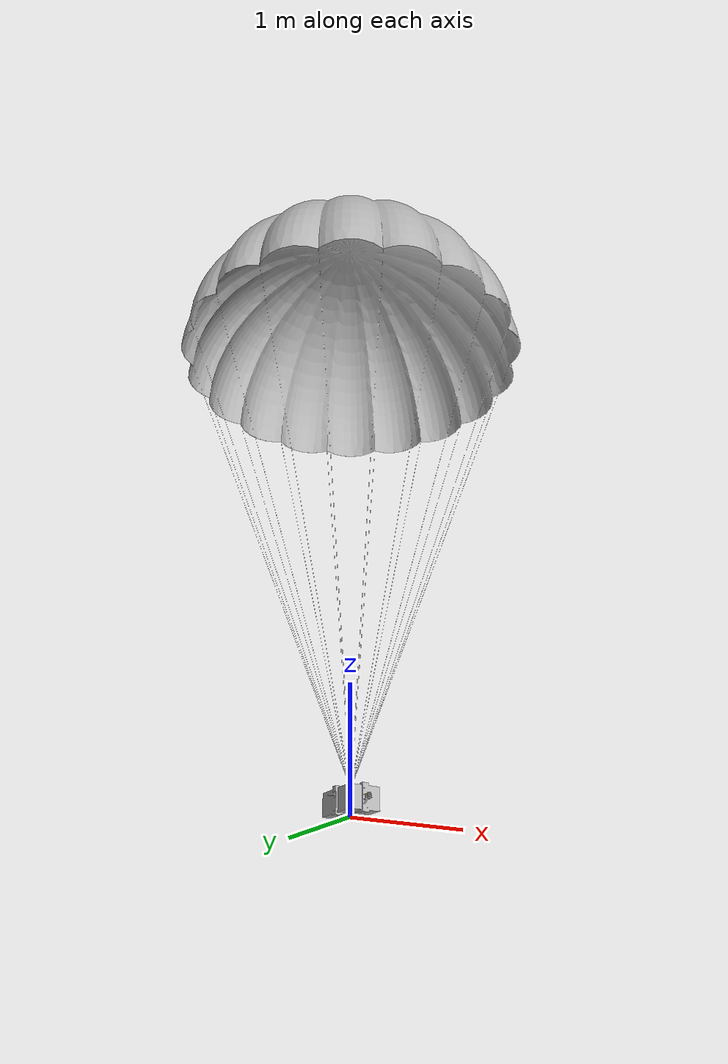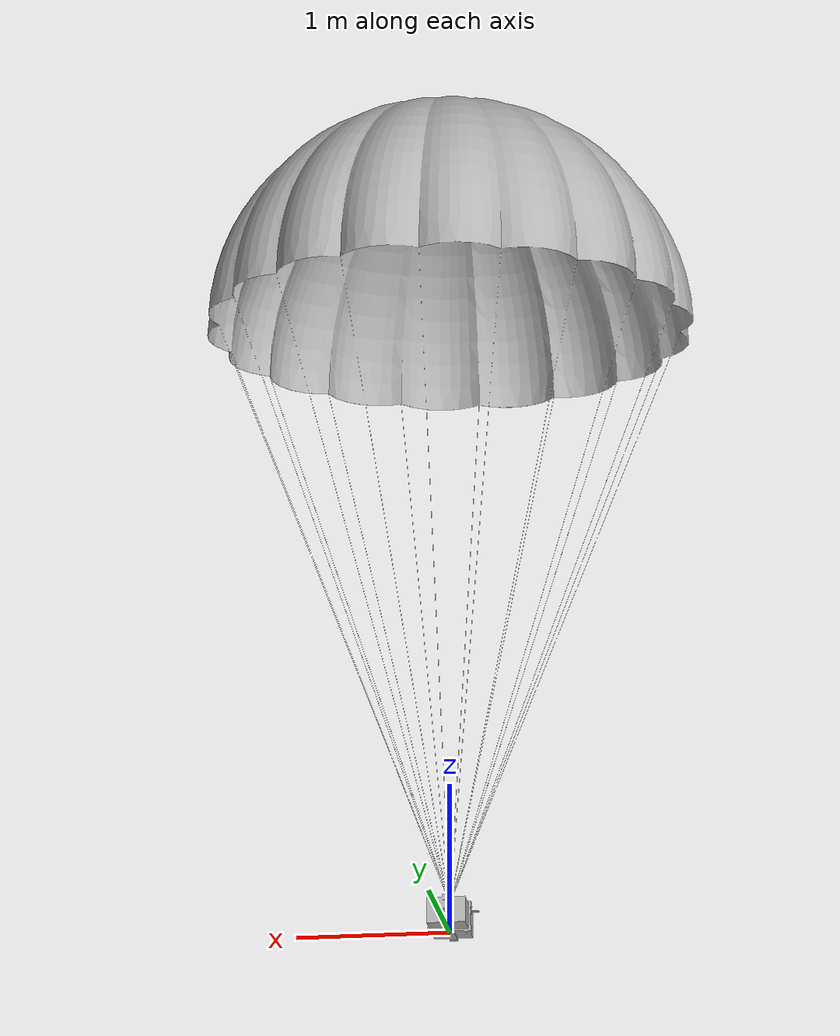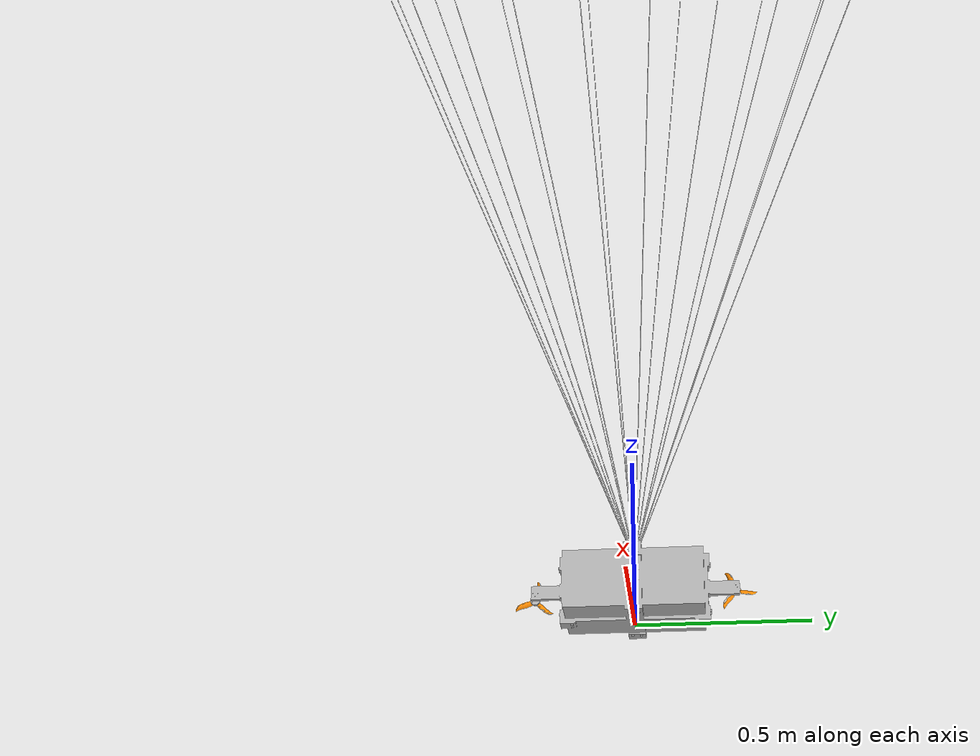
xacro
<?xml version="1.0" encoding="utf-8"?>
<robot

  name="parachute_drone" xmlns:xacro="http://www.ros.org/wiki/xacro">

  <xacro:include filename="$(find parachute_drone)/urdf/parachute_drone.gazebo"/>

  <link
    name="parachute_drone">
    <inertial>
      <origin
        xyz="-0.0 -0.0 0.0"
        rpy="0 0 0" />
      <mass
        value="2.5" />
      <inertia
        ixx="0.6"
        ixy="0.0"
        ixz="0.0"
        iyy="0.6"
        iyz="0.0"
        izz="0.3" />
    </inertial>
    <visual>
      <origin
        xyz="0 0 0"
        rpy="0 0 0" />
      <geometry>
        <mesh
          filename="package://parachute_drone/meshes/parachute_drone.STL" />
      </geometry>
      <material
        name="">
        <color
          rgba="0.69804 0.69804 0.69804 1" />
      </material>
    </visual>
    <collision>
      <origin
        xyz="0 0 0"
        rpy="0 0 0" />
      <geometry>
        <mesh
          filename="package://parachute_drone/meshes/parachute_drone.STL" />
      </geometry>
    </collision>
  </link>
  <link
    name="prop2">
    <inertial>
      <origin
        xyz="0 0 0.0"
        rpy="0 0 0" />
      <mass
        value="0.0036842" />
      <inertia
        ixx="0.001"
        ixy="0"
        ixz="0"
        iyy="0.001"
        iyz="0"
        izz="0.001" />
    </inertial>
    <visual>
      <origin
        xyz="0 0 0"
        rpy="0 0 0" />
      <geometry>
        <mesh
          filename="package://parachute_drone/meshes/prop2.STL" />
      </geometry>
      <material
        name="">
        <color
          rgba="1 0.54902 0 1" />
      </material>
    </visual>
    <collision>
      <origin
        xyz="0 0 0"
        rpy="0 0 0" />
      <geometry>
        <mesh
          filename="package://parachute_drone/meshes/prop2.STL" />
      </geometry>
    </collision>
  </link>
  <joint
    name="motor2"
    type="continuous">
    <origin
      xyz="-0.03343 0.288 0.1038"
      rpy="-1.5708 -1.1823 -1.5708" />
    <parent
      link="parachute_drone" />
    <child
      link="prop2" />
    <axis
      xyz="0 0 1" />
    <dynamics
      damping="0.0"
      friction="0.0" />
  </joint>
  <link
    name="prop1">
    <inertial>
      <origin
        xyz="0 0 0.0"
        rpy="0 0 0" />
      <mass
        value="0.0036837" />
      <inertia
        ixx="0.001"
        ixy="0"
        ixz="0"
        iyy="0.001"
        iyz="0"
        izz="0.001" />
    </inertial>
    <visual>
      <origin
        xyz="0 0 0"
        rpy="0 0 0" />
      <geometry>
        <mesh
          filename="package://parachute_drone/meshes/prop1.STL" />
      </geometry>
      <material
        name="">
        <color
          rgba="1 0.54902 0 1" />
      </material>
    </visual>
    <collision>
      <origin
        xyz="0 0 0"
        rpy="0 0 0" />
      <geometry>
        <mesh
          filename="package://parachute_drone/meshes/prop1.STL" />
      </geometry>
    </collision>
  </link>
  <joint
    name="motor1"
    type="continuous">
    <origin
      xyz="-0.03343 -0.28975 0.087994"
      rpy="1.5708 -1.3801 1.5708" />
    <parent
      link="parachute_drone" />
    <child
      link="prop1" />
    <axis
      xyz="0 0 1" />
    <dynamics
      damping="0.0"
      friction="0.0" />
  </joint>
</robot>
